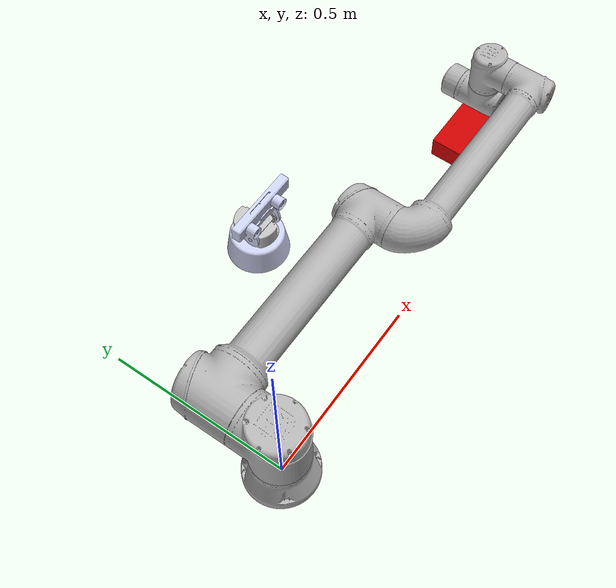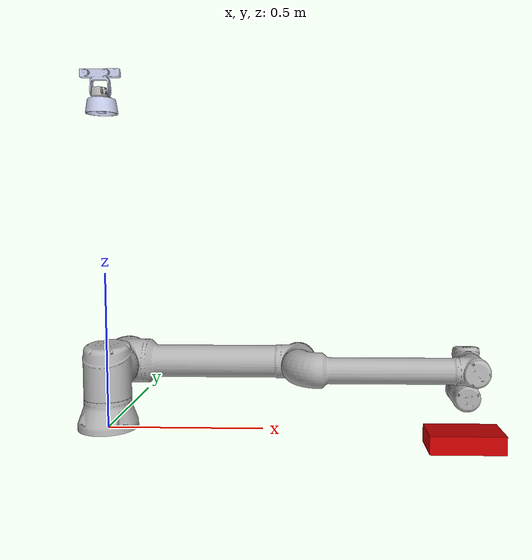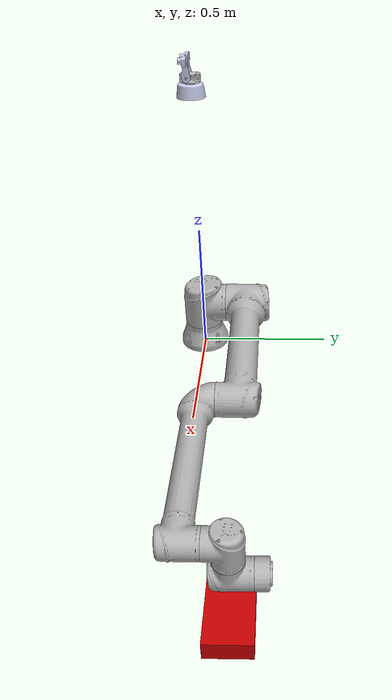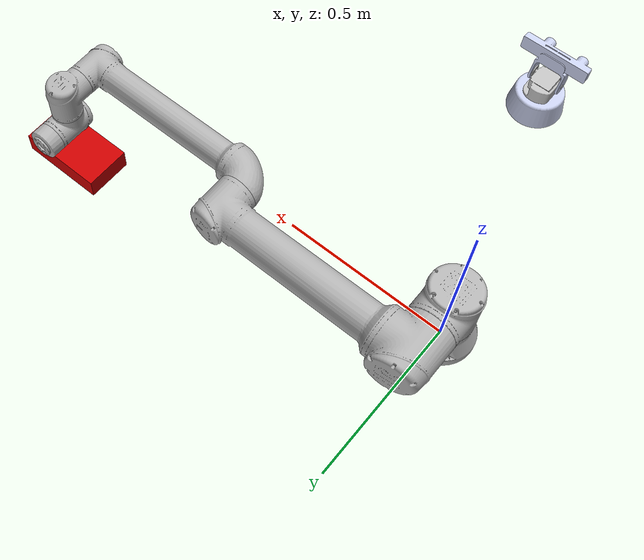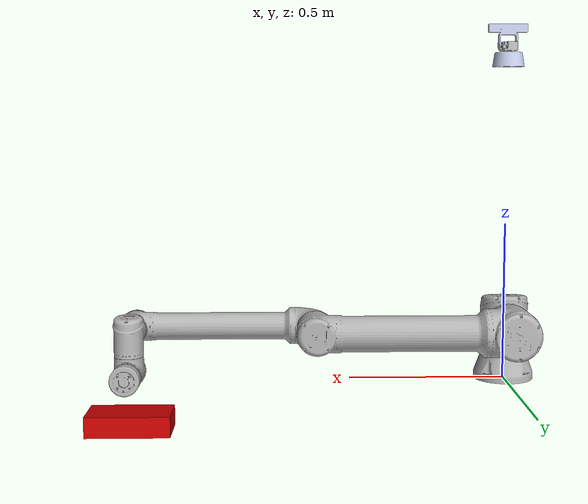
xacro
<?xml version="1.0"?>
<robot xmlns:xacro="http://ros.org/wiki/xacro"
       name="ur10e" >

  <!-- common stuff -->
  <xacro:include filename="$(find ur_e_description)/urdf/common.gazebo.xacro" />

  <!-- ur10e -->
  <xacro:include filename="$(find ur_e_description)/urdf/ur10e.urdf.xacro" />

  <!-- arm -->
  <xacro:ur10e_robot prefix="" joint_limited="true"
		 shoulder_pan_lower_limit="${-pi}" shoulder_pan_upper_limit="${pi}"
		 shoulder_lift_lower_limit="${-pi}" shoulder_lift_upper_limit="${0}"
		 elbow_joint_lower_limit="${-pi}" elbow_joint_upper_limit="${pi}"
		 wrist_1_lower_limit="${-pi}" wrist_1_upper_limit="${pi}"
		 wrist_2_lower_limit="${-pi}" wrist_2_upper_limit="${pi}"
		 wrist_3_lower_limit="${-pi}" wrist_3_upper_limit="${pi}"
     camera_lower_limit="${-pi}" camera_upper_limit="${pi}"
/>

  <link name="world" />

  <joint name="world_joint" type="fixed">
    <parent link="world" />
    <child link = "base_link" />
    <origin xyz="0.0 0.0 0.0" rpy="0.0 0.0 0.0" />
  </joint>

</robot>

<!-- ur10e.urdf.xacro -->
<robot xmlns:xacro="http://ros.org/wiki/xacro">

<!--
  Author: Kelsey Hawkins
  Contributers: Jimmy Da Silva, Ajit Krisshna N L, Muhammad Asif Rana
-->

  <xacro:include filename="$(find ur_e_description)/urdf/ur.transmission.xacro" />
  <xacro:include filename="$(find ur_e_description)/urdf/ur.gazebo.xacro" />
  <xacro:include filename="$(find ur_e_description)/urdf/ur.camera.gazebo"/>
  <xacro:include filename="$(find ur_e_description)/urdf/ur.camera.xacro"/>
  <xacro:include filename="$(find ur_e_description)/urdf/ur.multicamera.gazebo"/>
  <xacro:include filename="$(find ur_e_description)/urdf/ur.3dcamera.gazebo"/>
  <xacro:include filename="$(find ur_e_description)/urdf/ur.3dcamera.xacro"/>

  <xacro:macro name="cylinder_inertial" params="radius length mass *origin">
    <inertial>
      <mass value="${mass}" />
      <xacro:insert_block name="origin" />
      <inertia ixx="${0.0833333 * mass * (3 * radius * radius + length * length)}" ixy="0.0" ixz="0.0"
        iyy="${0.0833333 * mass * (3 * radius * radius + length * length)}" iyz="0.0"
        izz="${0.5 * mass * radius * radius}" />
    </inertial>
  </xacro:macro>

  <xacro:macro name="ur10e_robot" params="prefix joint_limited
    shoulder_pan_lower_limit:=${-pi}    shoulder_pan_upper_limit:=${pi}
    shoulder_lift_lower_limit:=${-pi}    shoulder_lift_upper_limit:=${pi}
    elbow_joint_lower_limit:=${-pi}    elbow_joint_upper_limit:=${pi}
    wrist_1_lower_limit:=${-pi}    wrist_1_upper_limit:=${pi}
    wrist_2_lower_limit:=${-pi}    wrist_2_upper_limit:=${pi}
    wrist_3_lower_limit:=${-pi}    wrist_3_upper_limit:=${pi}
    camera_lower_limit:=${-pi}    camera_upper_limit:=${-pi}
    transmission_hw_interface:=hardware_interface/PositionJointInterface
    safety_limits:=false safety_pos_margin:=0.15
    safety_k_position:=20">

    <!-- Inertia parameters -->
    <xacro:property name="base_mass" value="4.0" />  <!-- This mass might be incorrect -->
    <xacro:property name="shoulder_mass" value="7.778" />
    <xacro:property name="upper_arm_mass" value="12.93" />
    <xacro:property name="forearm_mass" value="3.87" />
    <xacro:property name="wrist_1_mass" value="1.96" />
    <xacro:property name="wrist_2_mass" value="1.96" />
    <xacro:property name="wrist_3_mass" value="0.202" />

    <xacro:property name="shoulder_cog" value="0.00008 0.00244 -0.037" />
    <xacro:property name="upper_arm_cog" value="0.00001 0.15061 0.38757" />
    <xacro:property name="forearm_cog" value="-0.00012 0.06112 0.1984" />
    <xacro:property name="wrist_1_cog" value="-0.00021 -0.00112 0.02269" />
    <xacro:property name="wrist_2_cog" value="-0.00021 0.00112 0.002269" />
    <xacro:property name="wrist_3_cog" value="0 -0.001156 -0.00149" />

    <!-- Kinematic model -->
    <!-- Properties from urcontrol.conf -->
    <xacro:property name="d1" value="0.181" />
    <xacro:property name="a2" value="-0.613" />
    <xacro:property name="a3" value="-0.571" />
    <xacro:property name="d4" value="0.135" />
    <xacro:property name="d5" value="0.120" />
    <xacro:property name="d6" value="0.117" />

    <!-- Arbitrary offsets for shoulder/elbow joints -->
    <xacro:property name="shoulder_offset" value="0.176" />
    <xacro:property name="elbow_offset" value="-0.137" />

    <!-- link lengths used in model -->
    <xacro:property name="shoulder_height" value="${d1}" />
    <xacro:property name="upper_arm_length" value="${-a2}" />
    <xacro:property name="forearm_length" value="${-a3}" />
    <xacro:property name="wrist_1_length" value="${d4}" />
    <xacro:property name="wrist_2_length" value="${d5}" />
    <xacro:property name="wrist_3_length" value="${d6}" />

    <link name="${prefix}base_link" >
      <visual>
        <geometry>
          <mesh filename="package://ur_e_description/meshes/ur10e/visual/base.dae"/>
        </geometry>
        <material name="LightGrey">
          <color rgba="0.7 0.7 0.7 1.0"/>
        </material>
      </visual>
      <collision>
        <geometry>
          <mesh filename="package://ur_e_description/meshes/ur10e/collision/base.stl"/>
        </geometry>
      </collision>
      <xacro:cylinder_inertial radius="0.075" length="0.038" mass="${base_mass}">
        <origin xyz="0.0 0.0 0.0" rpy="0 0 0" />
      </xacro:cylinder_inertial>
    </link>

    <joint name="${prefix}shoulder_pan_joint" type="revolute">
      <parent link="${prefix}base_link" />
      <child link = "${prefix}shoulder_link" />
      <origin xyz="0.0 0.0 ${shoulder_height}" rpy="0.0 0.0 0.0" />
      <axis xyz="0 0 1" />
      <xacro:unless value="${joint_limited}">
        <limit lower="${-2.0 * pi}" upper="${2.0 * pi}" effort="330.0" velocity="3.14"/>
        <xacro:if value="${safety_limits}">
          <safety_controller soft_lower_limit="${-2.0 * pi + safety_pos_margin}" soft_upper_limit="${2.0 * pi - safety_pos_margin}" k_position="${safety_k_position}" k_velocity="0.0"/>
        </xacro:if>
      </xacro:unless>
      <xacro:if value="${joint_limited}">
        <limit lower="${shoulder_pan_lower_limit}" upper="${shoulder_pan_upper_limit}" effort="330.0" velocity="3.14"/>
        <xacro:if value="${safety_limits}">
          <safety_controller soft_lower_limit="${shoulder_pan_lower_limit + safety_pos_margin}" soft_upper_limit="${shoulder_pan_upper_limit - safety_pos_margin}" k_position="${safety_k_position}" k_velocity="0.0"/>
        </xacro:if>
      </xacro:if>
      <dynamics damping="0.0" friction="0.0"/>
    </joint>

    <link name="${prefix}shoulder_link">
      <visual>
        <geometry>
          <mesh filename="package://ur_e_description/meshes/ur10e/visual/shoulder.dae"/>
        </geometry>
        <material name="LightGrey">
          <color rgba="0.7 0.7 0.7 1.0"/>
        </material>
      </visual>
      <collision>
        <geometry>
          <mesh filename="package://ur_e_description/meshes/ur10e/collision/shoulder.stl"/>
        </geometry>
      </collision>
      <xacro:cylinder_inertial radius="0.075" length="0.178" mass="${shoulder_mass}">
        <origin xyz="0.0 0.0 0.0" rpy="0 0 0" />
      </xacro:cylinder_inertial>
    </link>

    <joint name="${prefix}shoulder_lift_joint" type="revolute">
      <parent link="${prefix}shoulder_link" />
      <child link = "${prefix}upper_arm_link" />
      <origin xyz="0.0 ${shoulder_offset} 0.0" rpy="0.0 ${pi / 2.0} 0.0" />
      <axis xyz="0 1 0" />
      <xacro:unless value="${joint_limited}">
        <limit lower="${-2.0 * pi}" upper="${2.0 * pi}" effort="330.0" velocity="3.14"/>
        <xacro:if value="${safety_limits}">
          <safety_controller soft_lower_limit="${-2.0 * pi + safety_pos_margin}" soft_upper_limit="${2.0 * pi - safety_pos_margin}" k_position="${safety_k_position}" k_velocity="0.0"/>
        </xacro:if>
      </xacro:unless>
      <xacro:if value="${joint_limited}">
        <limit lower="${shoulder_lift_lower_limit}" upper="${shoulder_lift_upper_limit}" effort="330.0" velocity="3.14"/>
        <xacro:if value="${safety_limits}">
          <safety_controller soft_lower_limit="${shoulder_lift_lower_limit + safety_pos_margin}" soft_upper_limit="${shoulder_lift_upper_limit - safety_pos_margin}" k_position="${safety_k_position}" k_velocity="0.0"/>
        </xacro:if>
      </xacro:if>
      <dynamics damping="0.0" friction="0.0"/>
    </joint>

    <link name="${prefix}upper_arm_link">
      <visual>
        <geometry>
          <mesh filename="package://ur_e_description/meshes/ur10e/visual/upperarm.dae"/>
        </geometry>
        <material name="LightGrey">
          <color rgba="0.7 0.7 0.7 1.0"/>
        </material>
      </visual>
      <collision>
        <geometry>
          <mesh filename="package://ur_e_description/meshes/ur10e/collision/upperarm.stl"/>
        </geometry>
      </collision>
      <xacro:cylinder_inertial radius="0.075" length="${-a2}" mass="${upper_arm_mass}">
        <origin xyz="0.0 0.0 ${-a2/2.0}" rpy="0 0 0" />
      </xacro:cylinder_inertial>
    </link>

    <joint name="${prefix}elbow_joint" type="revolute">
      <parent link="${prefix}upper_arm_link" />
      <child link = "${prefix}forearm_link" />
      <origin xyz="0.0 ${elbow_offset} ${upper_arm_length}" rpy="0.0 0.0 0.0" />
      <axis xyz="0 1 0" />
      <xacro:unless value="${joint_limited}">
        <limit lower="${-pi}" upper="${pi}" effort="150.0" velocity="3.14"/>
        <xacro:if value="${safety_limits}">
          <safety_controller soft_lower_limit="${-2.0 * pi + safety_pos_margin}" soft_upper_limit="${2.0 * pi - safety_pos_margin}" k_position="${safety_k_position}" k_velocity="0.0"/>
        </xacro:if>
      </xacro:unless>
      <xacro:if value="${joint_limited}">
        <limit lower="${elbow_joint_lower_limit}" upper="${elbow_joint_upper_limit}" effort="150.0" velocity="3.14"/>
        <xacro:if value="${safety_limits}">
          <safety_controller soft_lower_limit="${elbow_joint_lower_limit + safety_pos_margin}" soft_upper_limit="${elbow_joint_upper_limit - safety_pos_margin}" k_position="${safety_k_position}" k_velocity="0.0"/>
        </xacro:if>
      </xacro:if>
      <dynamics damping="0.0" friction="0.0"/>
    </joint>

    <link name="${prefix}forearm_link">
      <visual>
         <geometry>
          <mesh filename="package://ur_e_description/meshes/ur10e/visual/forearm.dae"/>
        </geometry>
        <material name="LightGrey">
          <color rgba="0.7 0.7 0.7 1.0"/>
        </material>
      </visual>
      <collision>
        <geometry>
          <mesh filename="package://ur_e_description/meshes/ur10e/collision/forearm.stl"/>
        </geometry>
      </collision>
      <xacro:cylinder_inertial radius="0.075" length="${-a3}" mass="${forearm_mass}">
        <origin xyz="0.0 0.0 ${-a3/2.0}" rpy="0 0 0" />
      </xacro:cylinder_inertial>
    </link>

    <joint name="${prefix}wrist_1_joint" type="revolute">
      <parent link="${prefix}forearm_link" />
      <child link = "${prefix}wrist_1_link" />
      <origin xyz="0.0 0.0 ${forearm_length}" rpy="0.0 ${pi / 2.0} 0.0" />
      <axis xyz="0 1 0" />
      <xacro:unless value="${joint_limited}">
        <limit lower="${-2.0 * pi}" upper="${2.0 * pi}" effort="54.0" velocity="6.28"/>
        <xacro:if value="${safety_limits}">
          <safety_controller soft_lower_limit="${-2.0 * pi + safety_pos_margin}" soft_upper_limit="${2.0 * pi - safety_pos_margin}" k_position="${safety_k_position}" k_velocity="0.0"/>
        </xacro:if>
      </xacro:unless>
      <xacro:if value="${joint_limited}">
        <limit lower="${wrist_1_lower_limit}" upper="${wrist_1_upper_limit}" effort="54.0" velocity="6.28"/>
        <xacro:if value="${safety_limits}">
          <safety_controller soft_lower_limit="${wrist_1_lower_limit + safety_pos_margin}" soft_upper_limit="${wrist_1_upper_limit - safety_pos_margin}" k_position="${safety_k_position}" k_velocity="0.0"/>
        </xacro:if>
      </xacro:if>
      <dynamics damping="0.0" friction="0.0"/>
    </joint>

    <link name="${prefix}wrist_1_link">
      <visual>
        <geometry>
          <mesh filename="package://ur_e_description/meshes/ur10e/visual/wrist1.dae"/>
        </geometry>
        <material name="LightGrey">
          <color rgba="0.7 0.7 0.7 1.0"/>
        </material>
      </visual>
      <collision>
        <geometry>
          <mesh filename="package://ur_e_description/meshes/ur10e/collision/wrist1.stl"/>
        </geometry>
      </collision>
      <xacro:cylinder_inertial radius="0.075" length="0.12" mass="${wrist_1_mass}">
        <origin xyz="0.0 ${wrist_1_length} 0.0" rpy="0 0 0" />
      </xacro:cylinder_inertial>
    </link>

    <joint name="${prefix}wrist_2_joint" type="revolute">
      <parent link="${prefix}wrist_1_link" />
      <child link = "${prefix}wrist_2_link" />
      <origin xyz="0.0 ${wrist_1_length} 0.0" rpy="0.0 0.0 0.0" />
      <axis xyz="0 0 1" />
      <xacro:unless value="${joint_limited}">
        <limit lower="${-2.0 * pi}" upper="${2.0 * pi}" effort="54.0" velocity="6.28"/>
        <xacro:if value="${safety_limits}">
          <safety_controller soft_lower_limit="${-2.0 * pi + safety_pos_margin}" soft_upper_limit="${2.0 * pi - safety_pos_margin}" k_position="${safety_k_position}" k_velocity="0.0"/>
        </xacro:if>
      </xacro:unless>
      <xacro:if value="${joint_limited}">
        <limit lower="${wrist_2_lower_limit}" upper="${wrist_2_upper_limit}" effort="54.0" velocity="6.28"/>
        <xacro:if value="${safety_limits}">
          <safety_controller soft_lower_limit="${wrist_2_lower_limit + safety_pos_margin}" soft_upper_limit="${wrist_2_upper_limit - safety_pos_margin}" k_position="${safety_k_position}" k_velocity="0.0"/>
        </xacro:if>
      </xacro:if>
      <dynamics damping="0.0" friction="0.0"/>
    </joint>

    <link name="${prefix}wrist_2_link">
      <visual>
        <geometry>
          <mesh filename="package://ur_e_description/meshes/ur10e/visual/wrist2.dae"/>
        </geometry>
        <material name="LightGrey">
          <color rgba="0.7 0.7 0.7 1.0"/>
        </material>
      </visual>
      <collision>
        <geometry>
          <mesh filename="package://ur_e_description/meshes/ur10e/collision/wrist2.stl"/>
        </geometry>
      </collision>
      <xacro:cylinder_inertial radius="0.075" length="0.12" mass="${wrist_2_mass}">
        <origin xyz="0.0 0.0 ${wrist_2_length}" rpy="0 0 0" />
      </xacro:cylinder_inertial>
    </link>

    <joint name="${prefix}wrist_3_joint" type="revolute">
      <parent link="${prefix}wrist_2_link" />
      <child link = "${prefix}wrist_3_link" />
      <origin xyz="0.0 0.0 ${wrist_2_length}" rpy="0.0 0.0 0.0" />
      <axis xyz="0 1 0" />
      <xacro:unless value="${joint_limited}">
        <limit lower="${-2.0 * pi}" upper="${2.0 * pi}" effort="54.0" velocity="6.28"/>
        <xacro:if value="${safety_limits}">
          <safety_controller soft_lower_limit="${-2.0 * pi + safety_pos_margin}" soft_upper_limit="${2.0 * pi - safety_pos_margin}" k_position="${safety_k_position}" k_velocity="0.0"/>
        </xacro:if>
      </xacro:unless>
      <xacro:if value="${joint_limited}">
        <limit lower="${wrist_3_lower_limit}" upper="${wrist_3_upper_limit}" effort="54.0" velocity="6.28"/>
        <xacro:if value="${safety_limits}">
          <safety_controller soft_lower_limit="${wrist_3_lower_limit + safety_pos_margin}" soft_upper_limit="${wrist_3_upper_limit - safety_pos_margin}" k_position="${safety_k_position}" k_velocity="0.0"/>
        </xacro:if>
      </xacro:if>
      <dynamics damping="0.0" friction="0.0"/>
    </joint>

    <link name="${prefix}wrist_3_link">
      <visual>
        <geometry>
          <mesh filename="package://ur_e_description/meshes/ur10e/visual/wrist3.dae"/>
        </geometry>
        <material name="LightGrey">
          <color rgba="0.7 0.7 0.7 1.0"/>
        </material>
      </visual>
      <collision>
        <geometry>
          <mesh filename="package://ur_e_description/meshes/ur10e/collision/wrist3.stl"/>
        </geometry>
      </collision>
      <xacro:cylinder_inertial radius="0.045" length="0.05" mass="${wrist_3_mass}">
        <origin xyz="0.0 ${wrist_3_length - 0.05/2} 0.0" rpy="${pi/2} 0 0" />
      </xacro:cylinder_inertial>
    </link>

    <joint name="${prefix}ee_fixed_joint" type="fixed">
      <parent link="${prefix}wrist_3_link" />
      <child link = "${prefix}ee_link" />
      <origin xyz="0.0 ${wrist_3_length} 0.0" rpy="0.0 0.0 ${pi/2.0}" />
    </joint>

    <link name="${prefix}ee_link">
      <collision>
        <geometry>
          <box size="0.01 0.01 0.01"/>
        </geometry>
        <origin rpy="0 0 0" xyz="-0.01 0 0"/>
      </collision>
    </link>

    <xacro:ur_arm_transmission prefix="${prefix}" />
    <xacro:ur_arm_gazebo prefix="${prefix}" />
    <xacro:macro name="ur_camera" params="prefix"/>

    <!-- ROS base_link to UR 'Base' Coordinates transform -->
    <link name="${prefix}base"/>
    <joint name="${prefix}base_link-base_fixed_joint" type="fixed">
      <!-- NOTE: this rotation is only needed as long as base_link itself is
                 not corrected wrt the real robot (ie: rotated over 180
                 degrees)
      -->
      <origin xyz="0 0 0" rpy="0 0 ${-pi}"/>
      <parent link="${prefix}base_link"/>
      <child link="${prefix}base"/>
    </joint>

    <!-- Frame coincident with all-zeros TCP on UR controller -->
    <link name="${prefix}tool0"/>
    <joint name="${prefix}wrist_3_link-tool0_fixed_joint" type="fixed">
      <origin xyz="0 ${wrist_3_length} 0" rpy="${pi/-2.0} 0 0"/>
      <parent link="${prefix}wrist_3_link"/>
      <child link="${prefix}tool0"/>
    </joint>

  </xacro:macro>
</robot>

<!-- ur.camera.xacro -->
<robot xmlns:xacro="http://wiki.ros.org/xacro">

    <material name="red">
      <color rgba="0.8 0.0 0.0 1.0"/>
    </material>
    <xacro:property name="cameraSize" value="0.03" /> <!-- Size of square 'camera' box -->
    <xacro:property name="cameraMass" value="0.1" /> <!-- Mass of square 'camera' box -->

    <joint name="prismatic_joint_z" type="fixed">
      <origin xyz="0 0 1" rpy="0 0 0"/>
      <parent link="base_link"/>
      <child link="camera_base"/>
    </joint>
    <link name="camera_base">
      <inertial>
          <origin xyz="-1.042E-08 -0.0034422 0.026198" rpy="0 0 0" />
          <mass value="0.090334" />
          <inertia ixx="6.8467E-05" ixy="5.9979E-12" ixz="1.3439E-12" iyy="6.5123E-05" iyz="-1.8873E-07" izz="0.00010174" />
      </inertial>
      <visual>
          <origin xyz="0 0 0" rpy="0 0 0" />
          <geometry>
              <mesh filename="package://camera_mechanism_movment/meshes/base_link.STL" />
          </geometry>
          <material name="">
              <color rgba="0.79216 0.81961 0.93333 1" />
          </material>
      </visual>
      <collision>
          <origin xyz="0 0 0" rpy="0 0 0" />
          <geometry>
              <mesh filename="package://camera_mechanism_movment/meshes/base_link.STL" />
          </geometry>
      </collision>
  </link>
  <link name="link_1">
      <inertial>
          <origin xyz="-0.00274428257190968 -0.00020748847805208 0.0169598693710931" rpy="0 0 0" />
          <mass value="0.0762928038541526" />
          <inertia ixx="2.78524913265596E-05" ixy="1.44751279636948E-08" ixz="7.79881822675902E-07" iyy="1.38848895102569E-05" iyz="1.4640337530444E-08" izz="3.46925557643959E-05" />
      </inertial>
      <visual>
          <origin xyz="0 0 0" rpy="0 0 0" />
          <geometry>
              <mesh filename="package://camera_mechanism_movment/meshes/link_1.STL" />
          </geometry>
          <material name="">
              <color rgba="0.752941176470588 0.752941176470588 0.752941176470588 1" />
          </material>
      </visual>
      <collision>
          <origin xyz="0 0 0" rpy="0 0 0" />
          <geometry>
              <mesh filename="package://camera_mechanism_movment/meshes/link_1.STL" />
          </geometry>
      </collision>
  </link>
  <joint name="joint_1" type="revolute">
      <origin xyz="0 0 0.045256" rpy="0 0 0" />
      <parent link="camera_base" />
      <child link="link_1" />
      <axis xyz="0 0 -1" />
      <limit lower="-1.5708" upper="1.5708" effort="15" velocity="137" />
  </joint>
  <link name="link_2">
      <inertial>
          <origin xyz="0.00319069336561053 0.0467174118427644 0.0302711238523648" rpy="0 0 0" />
          <mass value="0.0760046548351893" />
          <inertia ixx="8.75759430262867E-05" ixy="-3.75975452138231E-08" ixz="-8.26121264442182E-07" iyy="8.43979936608012E-05" iyz="3.14738619919505E-08" izz="1.01097278745386E-05" />
      </inertial>
      <visual>
          <origin xyz="0 0 0" rpy="0 0 0" />
          <geometry>
              <mesh filename="package://camera_mechanism_movment/meshes/link_2.STL" />
          </geometry>
          <material name="">
              <color rgba="0.792156862745098 0.819607843137255 0.933333333333333 1" />
          </material>
      </visual>
      <collision>
          <origin xyz="0 0 0" rpy="0 0 0" />
          <geometry>
              <mesh filename="package://camera_mechanism_movment/meshes/link_2.STL" />
          </geometry>
      </collision>
  </link>
  <joint name="joint_2" type="revolute">
      <origin xyz="0.029615 -0.010178 0.021744" rpy="1.5708 0 -1.5708" />
      <parent link="link_1" />
      <child link="link_2" />
      <axis xyz="0 0 1" />
      <limit lower="-1.5708" upper="1.5708" effort="15" velocity="137" />
  </joint>
  <!--///////////////////////////////////////actual simulated camera/////////////////////////////-->
  <link name="camera_link">
    <collision>
      <origin xyz="0 0 0" rpy="0 0 0"/>
      <geometry>
        <box size="${cameraSize} ${cameraSize} ${cameraSize}"/>
      </geometry>
    </collision>

    <inertial>
      <mass value="${cameraMass}" />
      <origin xyz="0 0 0" rpy="0 0 0"/>
      <box_inertia m="${cameraMass}" x="${cameraSize}" y="${cameraSize}" z="${cameraSize}" />
      <inertia ixx="1e-6" ixy="0" ixz="0" iyy="1e-6" iyz="0" izz="1e-6" />
    </inertial>
  </link>

  <joint name="camera_joint" type="fixed">
    <axis xyz="0 1 0" />
    <origin xyz=".02 .05 .0342" rpy="-1.5708 0 0"/>
    <parent link="link_2"/>
    <child link="camera_link"/>
  </joint>

</robot>

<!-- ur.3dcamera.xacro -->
<robot xmlns:xacro="http://wiki.ros.org/xacro">

    <material name="3d_red">
      <color rgba="0.8 0.0 0.0 1.0"/>
    </material>
    <xacro:property name="cameraSize_x" value="0.142" /> <!-- Size of square 'camera' box -->
    <xacro:property name="cameraSize_y" value="0.26" /> <!-- Size of square 'camera' box -->
    <xacro:property name="cameraSize_z" value="0.065" /> <!-- Size of square 'camera' box -->
    <xacro:property name="cameraMass" value="1.9" /> <!-- Mass of square 'camera' box -->

  <!--///////////////////////////////////////simulated 3dcamera/////////////////////////////-->
  <link name="3d_camera_link">
    <collision>
      <origin xyz="0 0 0" rpy="0 0 0"/>
      <geometry>
        <box size="${cameraSize_x} ${cameraSize_y} ${cameraSize_z}"/>
      </geometry>
    </collision>

    <visual>
      <origin xyz="0 0 0" rpy="0 0 0"/>
      <geometry>
        <box size="${cameraSize_x} ${cameraSize_y} ${cameraSize_z}"/>
      </geometry>
      <material name="3d_red"/>
    </visual>

    <inertial>
      <mass value="${cameraMass}" />
      <origin xyz="0 0 0" rpy="0 0 0"/>
      <box_inertia m="${cameraMass}" x="${cameraSize_x}" y="${cameraSize_y}" z="${cameraSize_z}" />
      <inertia ixx="1e-6" ixy="0" ixz="0" iyy="1e-6" iyz="0" izz="1e-6" />
    </inertial>
  </link>

  <joint name="3d_camera_joint" type="fixed">
    <axis xyz="1 0 0" />
    <origin xyz="0 0 0.15" rpy="0 0 1.5708"/>
    <parent link="wrist_3_link"/>
    <child link="3d_camera_link"/>
  </joint>

  <joint name="camera_optical_joint" type="fixed">
    <origin xyz="0 0 0" rpy="-1.5708 0 -1.5708"/>
    <parent link="3d_camera_link"/>
    <child link="camera_frame_optical"/>
  </joint>
  <link name="camera_frame_optical"/>

</robot>
